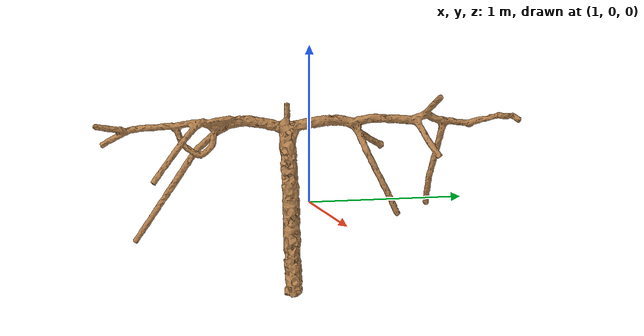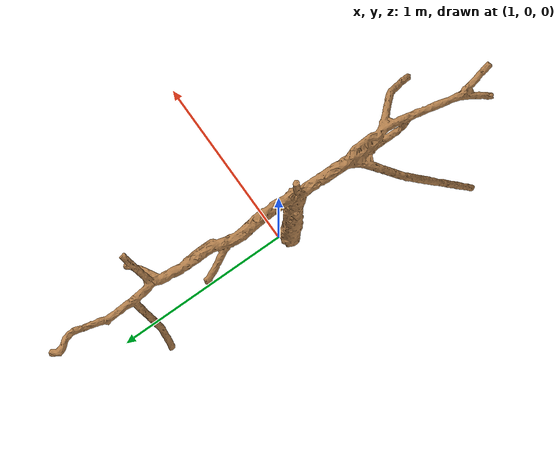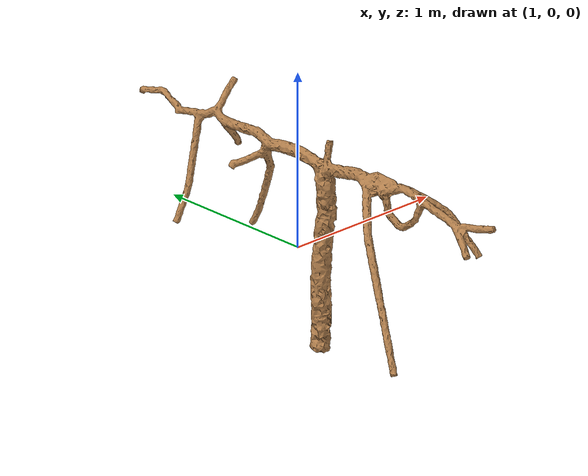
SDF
<?xml version= "1.0" ?>
<sdf version= "1.5">
	<model name= "vine">
		<static>true</static>
		<link name= "link" >
			<collision name = "collision">
				<geometry>
					<mesh>
						<uri>model://Vine2/meshes/mega_cloud16_processed.stl</uri>
						<scale>1 1 1</scale>
					</mesh>
				</geometry>
				<surface>
					<friction>
						<ode>
							<mu>100</mu>
							<mu2>50</mu2>
						</ode>
					</friction>
				</surface>
			</collision>
			<visual name= "visual">
				<geometry>
					<mesh>
						<uri>model://Vine2/meshes/mega_cloud16_processed.stl</uri>
						<scale>1 1 1</scale>
					</mesh>
				</geometry>
				<material>
					<script>
						<uri>file://media/materials/scripts/gazebo.material</uri>
						<name>Gazebo/Wood</name>
					</script>
				</material>
			</visual>
		</link>
	</model>
</sdf>
